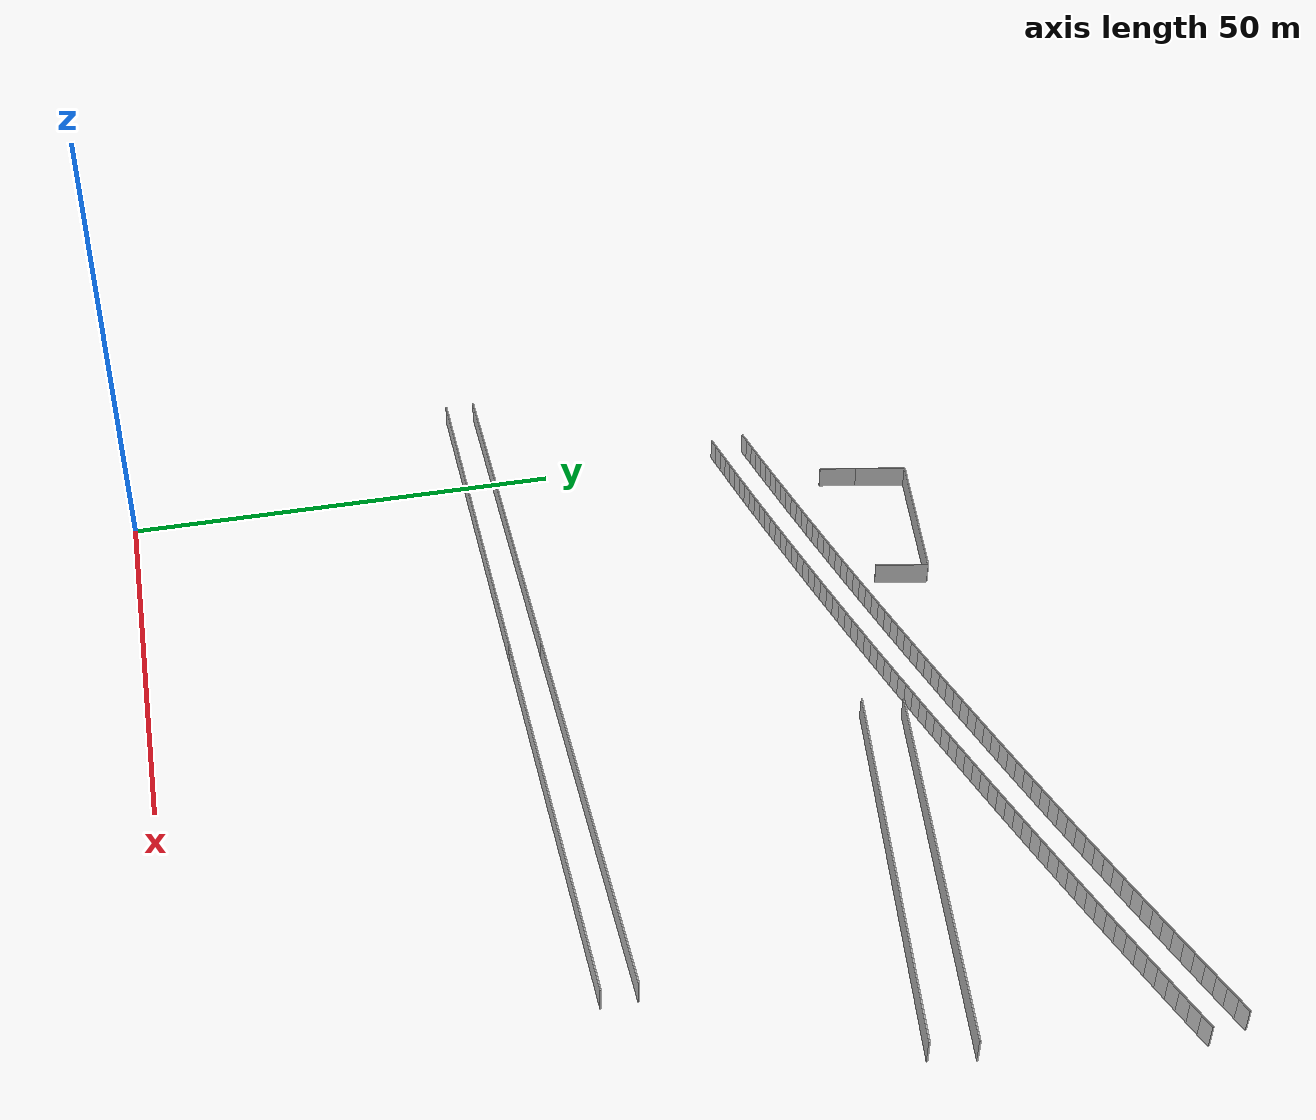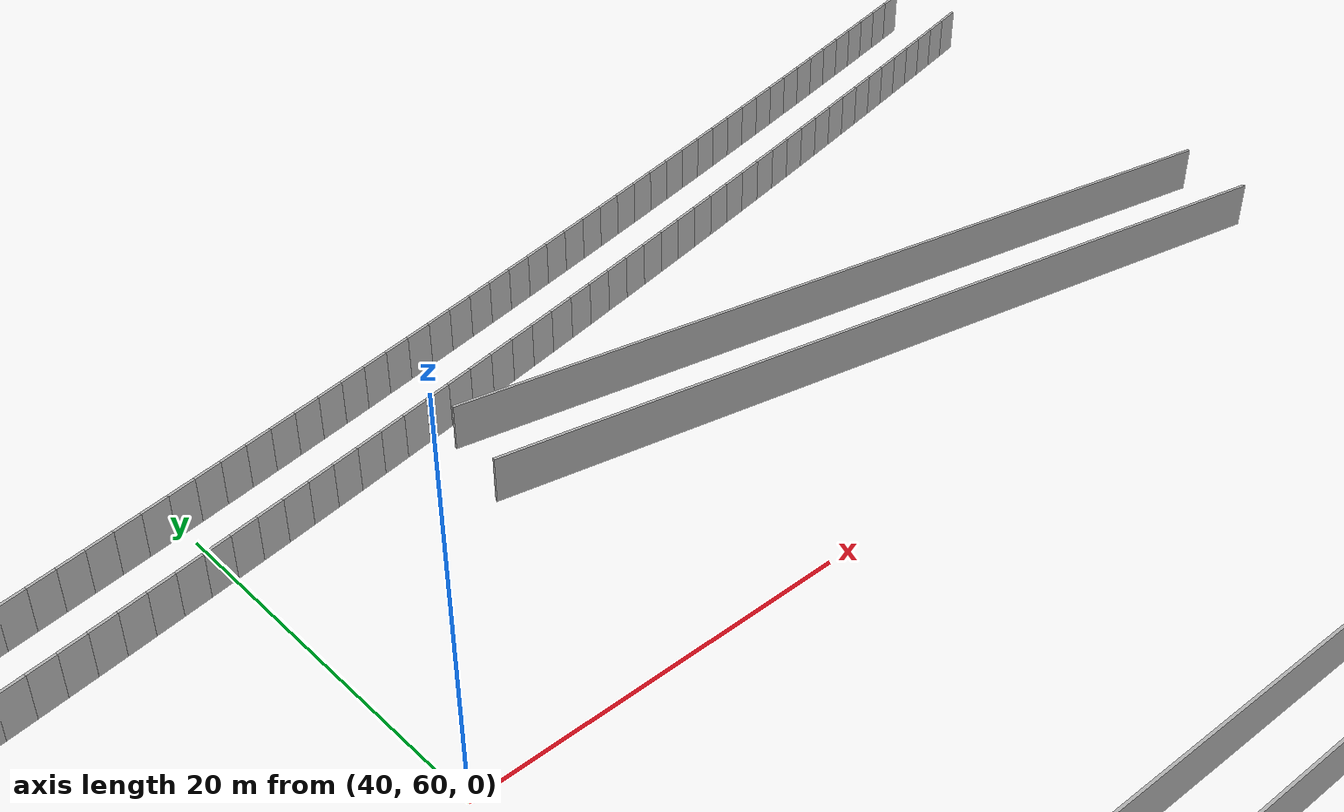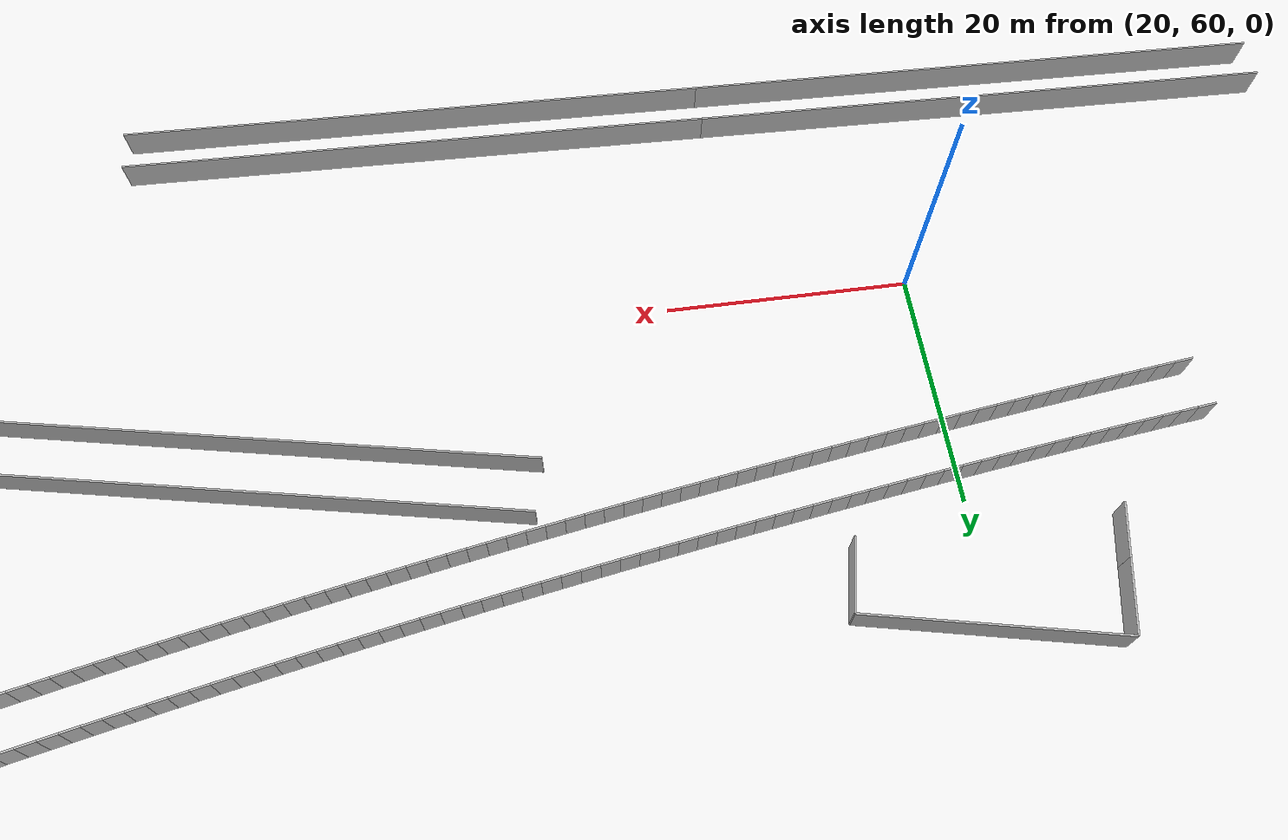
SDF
<sdf version="1.6">
 <model name="sps_1401">
  <static>1</static>
  <allow_auto_disable>0</allow_auto_disable>
  <link name="Wall137">
   <collision name="collision"><geometry><box><size>20 0.15 2.5</size></box></geometry></collision>
   <visual name="visual">
    <geometry><box><size>20 0.15 2.5</size></box></geometry>
    <transparency>0.0</transparency>
   </visual>
   <pose>21.0121 90.5186 1.25 0 0 -0.214245</pose>
  </link>
  <link name="Wall240">
   <collision name="collision"><geometry><box><size>5.9893 0.15 2.5</size></box></geometry></collision>
   <visual name="visual">
    <geometry><box><size>5.9893 0.15 2.5</size></box></geometry>
    <transparency>0.0</transparency>
   </visual>
   <pose>30.1468 85.4663 1.25 0 0 -1.78505</pose>
  </link>
  <link name="Wall374">
   <collision name="collision"><geometry><box><size>5.9893 0.15 2.5</size></box></geometry></collision>
   <visual name="visual">
    <geometry><box><size>5.9893 0.15 2.5</size></box></geometry>
    <transparency>0.0</transparency>
   </visual>
   <pose>10.604 89.7185 1.25 0 0 -1.78505</pose>
  </link>
  <link name="Wall459">
   <collision name="collision"><geometry><box><size>50.0165 0.15 2.5</size></box></geometry></collision>
   <visual name="visual">
    <geometry><box><size>50.0165 0.15 2.5</size></box></geometry>
    <transparency>0.0</transparency>
   </visual>
   <pose>59.4694 38.2343 1.25 0 -0 3.11591</pose>
  </link>
  <link name="Wall460">
   <collision name="collision"><geometry><box><size>50.0165 0.15 2.5</size></box></geometry></collision>
   <visual name="visual">
    <geometry><box><size>50.0165 0.15 2.5</size></box></geometry>
    <transparency>0.0</transparency>
   </visual>
   <pose>9.46944 39.5186 1.25 0 -0 3.11591</pose>
  </link>
  <link name="Wall465">
   <collision name="collision"><geometry><box><size>50.0165 0.15 2.5</size></box></geometry></collision>
   <visual name="visual">
    <geometry><box><size>50.0165 0.15 2.5</size></box></geometry>
    <transparency>0.0</transparency>
   </visual>
   <pose>9.46944 43.0195 1.25 0 0 -0.0256802</pose>
  </link>
  <link name="Wall466">
   <collision name="collision"><geometry><box><size>50.0165 0.15 2.5</size></box></geometry></collision>
   <visual name="visual">
    <geometry><box><size>50.0165 0.15 2.5</size></box></geometry>
    <transparency>0.0</transparency>
   </visual>
   <pose>59.4694 41.7352 1.25 0 0 -0.0256802</pose>
  </link>
  <link name="Wall2702">
   <collision name="collision"><geometry><box><size>4.39977 0.15 2.5</size></box></geometry></collision>
   <visual name="visual">
    <geometry><box><size>4.39977 0.15 2.5</size></box></geometry>
    <transparency>0.0</transparency>
   </visual>
   <pose>9.49975 84.6427 1.25 0 0 -1.78502</pose>
  </link>
  <link name="Wall3621">
   <collision name="collision"><geometry><box><size>45.9351 0.15 2.5</size></box></geometry></collision>
   <visual name="visual">
    <geometry><box><size>45.9351 0.15 2.5</size></box></geometry>
    <transparency>0.0</transparency>
   </visual>
   <pose>74.1661 68.5489 1.25 0 -0 2.93706</pose>
  </link>
  <link name="Wall3778">
   <collision name="collision"><geometry><box><size>1.49654 0.15 2.5</size></box></geometry></collision>
   <visual name="visual">
    <geometry><box><size>1.49654 0.15 2.5</size></box></geometry>
    <transparency>0.0</transparency>
   </visual>
   <pose>0.206657 75.4595 1.25 0 -0 0.116539</pose>
  </link>
  <link name="Wall3779">
   <collision name="collision"><geometry><box><size>1.49646 0.15 2.5</size></box></geometry></collision>
   <visual name="visual">
    <geometry><box><size>1.49646 0.15 2.5</size></box></geometry>
    <transparency>0.0</transparency>
   </visual>
   <pose>1.69286 75.6347 1.25 0 -0 0.118148</pose>
  </link>
  <link name="Wall3780">
   <collision name="collision"><geometry><box><size>1.49652 0.15 2.5</size></box></geometry></collision>
   <visual name="visual">
    <geometry><box><size>1.49652 0.15 2.5</size></box></geometry>
    <transparency>0.0</transparency>
   </visual>
   <pose>3.17876 75.8124 1.25 0 -0 0.119868</pose>
  </link>
  <link name="Wall3781">
   <collision name="collision"><geometry><box><size>1.4964 0.15 2.5</size></box></geometry></collision>
   <visual name="visual">
    <geometry><box><size>1.4964 0.15 2.5</size></box></geometry>
    <transparency>0.0</transparency>
   </visual>
   <pose>4.66436 75.9924 1.25 0 -0 0.121274</pose>
  </link>
  <link name="Wall3782">
   <collision name="collision"><geometry><box><size>1.49645 0.15 2.5</size></box></geometry></collision>
   <visual name="visual">
    <geometry><box><size>1.49645 0.15 2.5</size></box></geometry>
    <transparency>0.0</transparency>
   </visual>
   <pose>6.14965 76.1746 1.25 0 -0 0.122873</pose>
  </link>
  <link name="Wall3783">
   <collision name="collision"><geometry><box><size>1.4964 0.15 2.5</size></box></geometry></collision>
   <visual name="visual">
    <geometry><box><size>1.4964 0.15 2.5</size></box></geometry>
    <transparency>0.0</transparency>
   </visual>
   <pose>7.63464 76.3593 1.25 0 -0 0.124603</pose>
  </link>
  <link name="Wall3784">
   <collision name="collision"><geometry><box><size>1.49666 0.15 2.5</size></box></geometry></collision>
   <visual name="visual">
    <geometry><box><size>1.49666 0.15 2.5</size></box></geometry>
    <transparency>0.0</transparency>
   </visual>
   <pose>9.11944 76.5463 1.25 0 -0 0.125938</pose>
  </link>
  <link name="Wall3785">
   <collision name="collision"><geometry><box><size>1.49662 0.15 2.5</size></box></geometry></collision>
   <visual name="visual">
    <geometry><box><size>1.49662 0.15 2.5</size></box></geometry>
    <transparency>0.0</transparency>
   </visual>
   <pose>10.6041 76.7356 1.25 0 -0 0.127709</pose>
  </link>
  <link name="Wall3786">
   <collision name="collision"><geometry><box><size>1.49651 0.15 2.5</size></box></geometry></collision>
   <visual name="visual">
    <geometry><box><size>1.49651 0.15 2.5</size></box></geometry>
    <transparency>0.0</transparency>
   </visual>
   <pose>12.0883 76.9274 1.25 0 -0 0.129323</pose>
  </link>
  <link name="Wall3787">
   <collision name="collision"><geometry><box><size>1.49655 0.15 2.5</size></box></geometry></collision>
   <visual name="visual">
    <geometry><box><size>1.49655 0.15 2.5</size></box></geometry>
    <transparency>0.0</transparency>
   </visual>
   <pose>13.5722 77.1215 1.25 0 -0 0.1308</pose>
  </link>
  <link name="Wall3788">
   <collision name="collision"><geometry><box><size>1.49651 0.15 2.5</size></box></geometry></collision>
   <visual name="visual">
    <geometry><box><size>1.49651 0.15 2.5</size></box></geometry>
    <transparency>0.0</transparency>
   </visual>
   <pose>15.0557 77.3179 1.25 0 -0 0.132449</pose>
  </link>
  <link name="Wall3789">
   <collision name="collision"><geometry><box><size>1.49664 0.15 2.5</size></box></geometry></collision>
   <visual name="visual">
    <geometry><box><size>1.49664 0.15 2.5</size></box></geometry>
    <transparency>0.0</transparency>
   </visual>
   <pose>16.5391 77.5167 1.25 0 -0 0.134042</pose>
  </link>
  <link name="Wall3790">
   <collision name="collision"><geometry><box><size>1.49651 0.15 2.5</size></box></geometry></collision>
   <visual name="visual">
    <geometry><box><size>1.49651 0.15 2.5</size></box></geometry>
    <transparency>0.0</transparency>
   </visual>
   <pose>18.0221 77.7178 1.25 0 -0 0.135535</pose>
  </link>
  <link name="Wall3791">
   <collision name="collision"><geometry><box><size>1.4965 0.15 2.5</size></box></geometry></collision>
   <visual name="visual">
    <geometry><box><size>1.4965 0.15 2.5</size></box></geometry>
    <transparency>0.0</transparency>
   </visual>
   <pose>19.5047 77.9213 1.25 0 -0 0.137265</pose>
  </link>
  <link name="Wall3792">
   <collision name="collision"><geometry><box><size>1.49656 0.15 2.5</size></box></geometry></collision>
   <visual name="visual">
    <geometry><box><size>1.49656 0.15 2.5</size></box></geometry>
    <transparency>0.0</transparency>
   </visual>
   <pose>20.987 78.1272 1.25 0 -0 0.138742</pose>
  </link>
  <link name="Wall3793">
   <collision name="collision"><geometry><box><size>1.49654 0.15 2.5</size></box></geometry></collision>
   <visual name="visual">
    <geometry><box><size>1.49654 0.15 2.5</size></box></geometry>
    <transparency>0.0</transparency>
   </visual>
   <pose>22.469 78.3354 1.25 0 -0 0.140392</pose>
  </link>
  <link name="Wall3794">
   <collision name="collision"><geometry><box><size>1.49642 0.15 2.5</size></box></geometry></collision>
   <visual name="visual">
    <geometry><box><size>1.49642 0.15 2.5</size></box></geometry>
    <transparency>0.0</transparency>
   </visual>
   <pose>23.9506 78.5459 1.25 0 -0 0.141886</pose>
  </link>
  <link name="Wall3795">
   <collision name="collision"><geometry><box><size>1.49658 0.15 2.5</size></box></geometry></collision>
   <visual name="visual">
    <geometry><box><size>1.49658 0.15 2.5</size></box></geometry>
    <transparency>0.0</transparency>
   </visual>
   <pose>25.4318 78.7587 1.25 0 -0 0.143477</pose>
  </link>
  <link name="Wall3796">
   <collision name="collision"><geometry><box><size>1.49659 0.15 2.5</size></box></geometry></collision>
   <visual name="visual">
    <geometry><box><size>1.49659 0.15 2.5</size></box></geometry>
    <transparency>0.0</transparency>
   </visual>
   <pose>26.9129 78.974 1.25 0 -0 0.145248</pose>
  </link>
  <link name="Wall3797">
   <collision name="collision"><geometry><box><size>1.49665 0.15 2.5</size></box></geometry></collision>
   <visual name="visual">
    <geometry><box><size>1.49665 0.15 2.5</size></box></geometry>
    <transparency>0.0</transparency>
   </visual>
   <pose>28.3936 79.1916 1.25 0 -0 0.146603</pose>
  </link>
  <link name="Wall3798">
   <collision name="collision"><geometry><box><size>1.4966 0.15 2.5</size></box></geometry></collision>
   <visual name="visual">
    <geometry><box><size>1.4966 0.15 2.5</size></box></geometry>
    <transparency>0.0</transparency>
   </visual>
   <pose>29.874 79.4115 1.25 0 -0 0.148339</pose>
  </link>
  <link name="Wall3799">
   <collision name="collision"><geometry><box><size>1.49638 0.15 2.5</size></box></geometry></collision>
   <visual name="visual">
    <geometry><box><size>1.49638 0.15 2.5</size></box></geometry>
    <transparency>0.0</transparency>
   </visual>
   <pose>31.3538 79.6338 1.25 0 -0 0.149846</pose>
  </link>
  <link name="Wall3800">
   <collision name="collision"><geometry><box><size>1.49656 0.15 2.5</size></box></geometry></collision>
   <visual name="visual">
    <geometry><box><size>1.49656 0.15 2.5</size></box></geometry>
    <transparency>0.0</transparency>
   </visual>
   <pose>32.8334 79.8584 1.25 0 -0 0.151437</pose>
  </link>
  <link name="Wall3801">
   <collision name="collision"><geometry><box><size>1.49651 0.15 2.5</size></box></geometry></collision>
   <visual name="visual">
    <geometry><box><size>1.49651 0.15 2.5</size></box></geometry>
    <transparency>0.0</transparency>
   </visual>
   <pose>34.3126 80.0854 1.25 0 -0 0.153093</pose>
  </link>
  <link name="Wall3802">
   <collision name="collision"><geometry><box><size>1.49642 0.15 2.5</size></box></geometry></collision>
   <visual name="visual">
    <geometry><box><size>1.49642 0.15 2.5</size></box></geometry>
    <transparency>0.0</transparency>
   </visual>
   <pose>35.7914 80.3147 1.25 0 -0 0.154587</pose>
  </link>
  <link name="Wall3803">
   <collision name="collision"><geometry><box><size>1.49661 0.15 2.5</size></box></geometry></collision>
   <visual name="visual">
    <geometry><box><size>1.49661 0.15 2.5</size></box></geometry>
    <transparency>0.0</transparency>
   </visual>
   <pose>37.2699 80.5463 1.25 0 -0 0.156178</pose>
  </link>
  <link name="Wall3804">
   <collision name="collision"><geometry><box><size>1.4966 0.15 2.5</size></box></geometry></collision>
   <visual name="visual">
    <geometry><box><size>1.4966 0.15 2.5</size></box></geometry>
    <transparency>0.0</transparency>
   </visual>
   <pose>38.7481 80.7802 1.25 0 -0 0.157706</pose>
  </link>
  <link name="Wall3805">
   <collision name="collision"><geometry><box><size>1.49657 0.15 2.5</size></box></geometry></collision>
   <visual name="visual">
    <geometry><box><size>1.49657 0.15 2.5</size></box></geometry>
    <transparency>0.0</transparency>
   </visual>
   <pose>40.2259 81.0165 1.25 0 -0 0.159403</pose>
  </link>
  <link name="Wall3806">
   <collision name="collision"><geometry><box><size>1.49651 0.15 2.5</size></box></geometry></collision>
   <visual name="visual">
    <geometry><box><size>1.49651 0.15 2.5</size></box></geometry>
    <transparency>0.0</transparency>
   </visual>
   <pose>41.7033 81.2552 1.25 0 -0 0.160938</pose>
  </link>
  <link name="Wall3807">
   <collision name="collision"><geometry><box><size>1.49653 0.15 2.5</size></box></geometry></collision>
   <visual name="visual">
    <geometry><box><size>1.49653 0.15 2.5</size></box></geometry>
    <transparency>0.0</transparency>
   </visual>
   <pose>43.1803 81.4962 1.25 0 -0 0.162547</pose>
  </link>
  <link name="Wall3808">
   <collision name="collision"><geometry><box><size>1.49648 0.15 2.5</size></box></geometry></collision>
   <visual name="visual">
    <geometry><box><size>1.49648 0.15 2.5</size></box></geometry>
    <transparency>0.0</transparency>
   </visual>
   <pose>44.6569 81.7395 1.25 0 -0 0.164083</pose>
  </link>
  <link name="Wall3809">
   <collision name="collision"><geometry><box><size>1.4965 0.15 2.5</size></box></geometry></collision>
   <visual name="visual">
    <geometry><box><size>1.4965 0.15 2.5</size></box></geometry>
    <transparency>0.0</transparency>
   </visual>
   <pose>46.133 81.9851 1.25 0 -0 0.165652</pose>
  </link>
  <link name="Wall3810">
   <collision name="collision"><geometry><box><size>1.49648 0.15 2.5</size></box></geometry></collision>
   <visual name="visual">
    <geometry><box><size>1.49648 0.15 2.5</size></box></geometry>
    <transparency>0.0</transparency>
   </visual>
   <pose>47.6088 82.2331 1.25 0 -0 0.167308</pose>
  </link>
  <link name="Wall3811">
   <collision name="collision"><geometry><box><size>1.49652 0.15 2.5</size></box></geometry></collision>
   <visual name="visual">
    <geometry><box><size>1.49652 0.15 2.5</size></box></geometry>
    <transparency>0.0</transparency>
   </visual>
   <pose>49.0843 82.4835 1.25 0 -0 0.168917</pose>
  </link>
  <link name="Wall3812">
   <collision name="collision"><geometry><box><size>1.49666 0.15 2.5</size></box></geometry></collision>
   <visual name="visual">
    <geometry><box><size>1.49666 0.15 2.5</size></box></geometry>
    <transparency>0.0</transparency>
   </visual>
   <pose>50.5593 82.7362 1.25 0 -0 0.170432</pose>
  </link>
  <link name="Wall3813">
   <collision name="collision"><geometry><box><size>1.49651 0.15 2.5</size></box></geometry></collision>
   <visual name="visual">
    <geometry><box><size>1.49651 0.15 2.5</size></box></geometry>
    <transparency>0.0</transparency>
   </visual>
   <pose>52.034 82.9912 1.25 0 -0 0.172021</pose>
  </link>
  <link name="Wall3814">
   <collision name="collision"><geometry><box><size>1.49651 0.15 2.5</size></box></geometry></collision>
   <visual name="visual">
    <geometry><box><size>1.49651 0.15 2.5</size></box></geometry>
    <transparency>0.0</transparency>
   </visual>
   <pose>53.5083 83.2486 1.25 0 -0 0.173678</pose>
  </link>
  <link name="Wall3815">
   <collision name="collision"><geometry><box><size>1.49647 0.15 2.5</size></box></geometry></collision>
   <visual name="visual">
    <geometry><box><size>1.49647 0.15 2.5</size></box></geometry>
    <transparency>0.0</transparency>
   </visual>
   <pose>54.982 83.5083 1.25 0 -0 0.175173</pose>
  </link>
  <link name="Wall3816">
   <collision name="collision"><geometry><box><size>1.49635 0.15 2.5</size></box></geometry></collision>
   <visual name="visual">
    <geometry><box><size>1.49635 0.15 2.5</size></box></geometry>
    <transparency>0.0</transparency>
   </visual>
   <pose>56.4553 83.7703 1.25 0 -0 0.176804</pose>
  </link>
  <link name="Wall3817">
   <collision name="collision"><geometry><box><size>1.49654 0.15 2.5</size></box></geometry></collision>
   <visual name="visual">
    <geometry><box><size>1.49654 0.15 2.5</size></box></geometry>
    <transparency>0.0</transparency>
   </visual>
   <pose>57.9282 84.0347 1.25 0 -0 0.178438</pose>
  </link>
  <link name="Wall3818">
   <collision name="collision"><geometry><box><size>1.49657 0.15 2.5</size></box></geometry></collision>
   <visual name="visual">
    <geometry><box><size>1.49657 0.15 2.5</size></box></geometry>
    <transparency>0.0</transparency>
   </visual>
   <pose>59.4008 84.3014 1.25 0 -0 0.179926</pose>
  </link>
  <link name="Wall3819">
   <collision name="collision"><geometry><box><size>1.49658 0.15 2.5</size></box></geometry></collision>
   <visual name="visual">
    <geometry><box><size>1.49658 0.15 2.5</size></box></geometry>
    <transparency>0.0</transparency>
   </visual>
   <pose>60.873 84.5704 1.25 0 -0 0.181542</pose>
  </link>
  <link name="Wall3820">
   <collision name="collision"><geometry><box><size>1.49665 0.15 2.5</size></box></geometry></collision>
   <visual name="visual">
    <geometry><box><size>1.49665 0.15 2.5</size></box></geometry>
    <transparency>0.0</transparency>
   </visual>
   <pose>62.3448 84.8418 1.25 0 -0 0.183151</pose>
  </link>
  <link name="Wall3821">
   <collision name="collision"><geometry><box><size>1.49649 0.15 2.5</size></box></geometry></collision>
   <visual name="visual">
    <geometry><box><size>1.49649 0.15 2.5</size></box></geometry>
    <transparency>0.0</transparency>
   </visual>
   <pose>63.8162 85.1156 1.25 0 -0 0.184789</pose>
  </link>
  <link name="Wall3822">
   <collision name="collision"><geometry><box><size>1.49648 0.15 2.5</size></box></geometry></collision>
   <visual name="visual">
    <geometry><box><size>1.49648 0.15 2.5</size></box></geometry>
    <transparency>0.0</transparency>
   </visual>
   <pose>65.2869 85.3917 1.25 0 -0 0.186325</pose>
  </link>
  <link name="Wall3823">
   <collision name="collision"><geometry><box><size>1.49671 0.15 2.5</size></box></geometry></collision>
   <visual name="visual">
    <geometry><box><size>1.49671 0.15 2.5</size></box></geometry>
    <transparency>0.0</transparency>
   </visual>
   <pose>66.7574 85.67 1.25 0 -0 0.18779</pose>
  </link>
  <link name="Wall3824">
   <collision name="collision"><geometry><box><size>1.49638 0.15 2.5</size></box></geometry></collision>
   <visual name="visual">
    <geometry><box><size>1.49638 0.15 2.5</size></box></geometry>
    <transparency>0.0</transparency>
   </visual>
   <pose>68.2274 85.9506 1.25 0 -0 0.189452</pose>
  </link>
  <link name="Wall3825">
   <collision name="collision"><geometry><box><size>1.49665 0.15 2.5</size></box></geometry></collision>
   <visual name="visual">
    <geometry><box><size>1.49665 0.15 2.5</size></box></geometry>
    <transparency>0.0</transparency>
   </visual>
   <pose>69.697 86.2336 1.25 0 -0 0.191037</pose>
  </link>
  <link name="Wall3826">
   <collision name="collision"><geometry><box><size>1.49652 0.15 2.5</size></box></geometry></collision>
   <visual name="visual">
    <geometry><box><size>1.49652 0.15 2.5</size></box></geometry>
    <transparency>0.0</transparency>
   </visual>
   <pose>71.1661 86.519 1.25 0 -0 0.192716</pose>
  </link>
  <link name="Wall3827">
   <collision name="collision"><geometry><box><size>1.49651 0.15 2.5</size></box></geometry></collision>
   <visual name="visual">
    <geometry><box><size>1.49651 0.15 2.5</size></box></geometry>
    <transparency>0.0</transparency>
   </visual>
   <pose>72.6347 86.8067 1.25 0 -0 0.194172</pose>
  </link>
  <link name="Wall3828">
   <collision name="collision"><geometry><box><size>1.49638 0.15 2.5</size></box></geometry></collision>
   <visual name="visual">
    <geometry><box><size>1.49638 0.15 2.5</size></box></geometry>
    <transparency>0.0</transparency>
   </visual>
   <pose>74.1027 87.0967 1.25 0 -0 0.195852</pose>
  </link>
  <link name="Wall3829">
   <collision name="collision"><geometry><box><size>1.49646 0.15 2.5</size></box></geometry></collision>
   <visual name="visual">
    <geometry><box><size>1.49646 0.15 2.5</size></box></geometry>
    <transparency>0.0</transparency>
   </visual>
   <pose>75.5703 87.389 1.25 0 -0 0.19738</pose>
  </link>
  <link name="Wall3830">
   <collision name="collision"><geometry><box><size>1.49656 0.15 2.5</size></box></geometry></collision>
   <visual name="visual">
    <geometry><box><size>1.49656 0.15 2.5</size></box></geometry>
    <transparency>0.0</transparency>
   </visual>
   <pose>77.0376 87.6836 1.25 0 -0 0.198947</pose>
  </link>
  <link name="Wall3831">
   <collision name="collision"><geometry><box><size>1.49652 0.15 2.5</size></box></geometry></collision>
   <visual name="visual">
    <geometry><box><size>1.49652 0.15 2.5</size></box></geometry>
    <transparency>0.0</transparency>
   </visual>
   <pose>78.5044 87.9805 1.25 0 -0 0.200451</pose>
  </link>
  <link name="Wall3832">
   <collision name="collision"><geometry><box><size>1.4965 0.15 2.5</size></box></geometry></collision>
   <visual name="visual">
    <geometry><box><size>1.4965 0.15 2.5</size></box></geometry>
    <transparency>0.0</transparency>
   </visual>
   <pose>79.9706 88.2798 1.25 0 -0 0.202243</pose>
  </link>
  <link name="Wall3833">
   <collision name="collision"><geometry><box><size>1.49659 0.15 2.5</size></box></geometry></collision>
   <visual name="visual">
    <geometry><box><size>1.49659 0.15 2.5</size></box></geometry>
    <transparency>0.0</transparency>
   </visual>
   <pose>81.4365 88.5815 1.25 0 -0 0.20373</pose>
  </link>
  <link name="Wall3834">
   <collision name="collision"><geometry><box><size>1.49663 0.15 2.5</size></box></geometry></collision>
   <visual name="visual">
    <geometry><box><size>1.49663 0.15 2.5</size></box></geometry>
    <transparency>0.0</transparency>
   </visual>
   <pose>82.9019 88.8854 1.25 0 -0 0.205266</pose>
  </link>
  <link name="Wall3835">
   <collision name="collision"><geometry><box><size>1.49654 0.15 2.5</size></box></geometry></collision>
   <visual name="visual">
    <geometry><box><size>1.49654 0.15 2.5</size></box></geometry>
    <transparency>0.0</transparency>
   </visual>
   <pose>84.3668 89.1917 1.25 0 -0 0.206986</pose>
  </link>
  <link name="Wall3836">
   <collision name="collision"><geometry><box><size>1.49655 0.15 2.5</size></box></geometry></collision>
   <visual name="visual">
    <geometry><box><size>1.49655 0.15 2.5</size></box></geometry>
    <transparency>0.0</transparency>
   </visual>
   <pose>85.8312 89.5003 1.25 0 -0 0.208402</pose>
  </link>
  <link name="Wall3837">
   <collision name="collision"><geometry><box><size>1.49673 0.15 2.5</size></box></geometry></collision>
   <visual name="visual">
    <geometry><box><size>1.49673 0.15 2.5</size></box></geometry>
    <transparency>0.0</transparency>
   </visual>
   <pose>87.2952 89.8112 1.25 0 -0 0.210128</pose>
  </link>
  <link name="Wall3838">
   <collision name="collision"><geometry><box><size>1.49641 0.15 2.5</size></box></geometry></collision>
   <visual name="visual">
    <geometry><box><size>1.49641 0.15 2.5</size></box></geometry>
    <transparency>0.0</transparency>
   </visual>
   <pose>88.7586 90.1245 1.25 0 -0 0.211674</pose>
  </link>
  <link name="Wall3839">
   <collision name="collision"><geometry><box><size>1.49664 0.15 2.5</size></box></geometry></collision>
   <visual name="visual">
    <geometry><box><size>1.49664 0.15 2.5</size></box></geometry>
    <transparency>0.0</transparency>
   </visual>
   <pose>90.2215 90.44 1.25 0 -0 0.213144</pose>
  </link>
  <link name="Wall3840">
   <collision name="collision"><geometry><box><size>1.49648 0.15 2.5</size></box></geometry></collision>
   <visual name="visual">
    <geometry><box><size>1.49648 0.15 2.5</size></box></geometry>
    <transparency>0.0</transparency>
   </visual>
   <pose>91.6839 90.7579 1.25 0 -0 0.214962</pose>
  </link>
  <link name="Wall3841">
   <collision name="collision"><geometry><box><size>1.49643 0.15 2.5</size></box></geometry></collision>
   <visual name="visual">
    <geometry><box><size>1.49643 0.15 2.5</size></box></geometry>
    <transparency>0.0</transparency>
   </visual>
   <pose>93.1457 91.0781 1.25 0 -0 0.216346</pose>
  </link>
  <link name="Wall3842">
   <collision name="collision"><geometry><box><size>1.49663 0.15 2.5</size></box></geometry></collision>
   <visual name="visual">
    <geometry><box><size>1.49663 0.15 2.5</size></box></geometry>
    <transparency>0.0</transparency>
   </visual>
   <pose>94.607 91.4005 1.25 0 -0 0.217904</pose>
  </link>
  <link name="Wall3843">
   <collision name="collision"><geometry><box><size>1.49647 0.15 2.5</size></box></geometry></collision>
   <visual name="visual">
    <geometry><box><size>1.49647 0.15 2.5</size></box></geometry>
    <transparency>0.0</transparency>
   </visual>
   <pose>96.068 91.7252 1.25 0 -0 0.219474</pose>
  </link>
  <link name="Wall3844">
   <collision name="collision"><geometry><box><size>1.49651 0.15 2.5</size></box></geometry></collision>
   <visual name="visual">
    <geometry><box><size>1.49651 0.15 2.5</size></box></geometry>
    <transparency>0.0</transparency>
   </visual>
   <pose>97.5283 92.0523 1.25 0 -0 0.221266</pose>
  </link>
  <link name="Wall3845">
   <collision name="collision"><geometry><box><size>1.49638 0.15 2.5</size></box></geometry></collision>
   <visual name="visual">
    <geometry><box><size>1.49638 0.15 2.5</size></box></geometry>
    <transparency>0.0</transparency>
   </visual>
   <pose>98.988 92.3818 1.25 0 -0 0.222748</pose>
  </link>
  <link name="Wall7396">
   <collision name="collision"><geometry><box><size>45.8889 0.15 2.5</size></box></geometry></collision>
   <visual name="visual">
    <geometry><box><size>45.8889 0.15 2.5</size></box></geometry>
    <transparency>0.0</transparency>
   </visual>
   <pose>75.0788 72.8531 1.25 0 -0 2.93706</pose>
  </link>
  <link name="Wall7553">
   <collision name="collision"><geometry><box><size>1.5032 0.15 2.5</size></box></geometry></collision>
   <visual name="visual">
    <geometry><box><size>1.5032 0.15 2.5</size></box></geometry>
    <transparency>0.0</transparency>
   </visual>
   <pose>0.691154 71.3476 1.25 0 -0 0.116675</pose>
  </link>
  <link name="Wall7554">
   <collision name="collision"><geometry><box><size>1.5031 0.15 2.5</size></box></geometry></collision>
   <visual name="visual">
    <geometry><box><size>1.5031 0.15 2.5</size></box></geometry>
    <transparency>0.0</transparency>
   </visual>
   <pose>2.18395 71.5237 1.25 0 -0 0.118195</pose>
  </link>
  <link name="Wall7555">
   <collision name="collision"><geometry><box><size>1.50313 0.15 2.5</size></box></geometry></collision>
   <visual name="visual">
    <geometry><box><size>1.50313 0.15 2.5</size></box></geometry>
    <transparency>0.0</transparency>
   </visual>
   <pose>3.67644 71.7021 1.25 0 -0 0.119747</pose>
  </link>
  <link name="Wall7556">
   <collision name="collision"><geometry><box><size>1.50306 0.15 2.5</size></box></geometry></collision>
   <visual name="visual">
    <geometry><box><size>1.50306 0.15 2.5</size></box></geometry>
    <transparency>0.0</transparency>
   </visual>
   <pose>5.16863 71.8829 1.25 0 -0 0.121388</pose>
  </link>
  <link name="Wall7557">
   <collision name="collision"><geometry><box><size>1.50297 0.15 2.5</size></box></geometry></collision>
   <visual name="visual">
    <geometry><box><size>1.50297 0.15 2.5</size></box></geometry>
    <transparency>0.0</transparency>
   </visual>
   <pose>6.66045 72.066 1.25 0 -0 0.122869</pose>
  </link>
  <link name="Wall7558">
   <collision name="collision"><geometry><box><size>1.5032 0.15 2.5</size></box></geometry></collision>
   <visual name="visual">
    <geometry><box><size>1.5032 0.15 2.5</size></box></geometry>
    <transparency>0.0</transparency>
   </visual>
   <pose>8.15206 72.2514 1.25 0 -0 0.124446</pose>
  </link>
  <link name="Wall7559">
   <collision name="collision"><geometry><box><size>1.50296 0.15 2.5</size></box></geometry></collision>
   <visual name="visual">
    <geometry><box><size>1.50296 0.15 2.5</size></box></geometry>
    <transparency>0.0</transparency>
   </visual>
   <pose>9.64336 72.4392 1.25 0 -0 0.126103</pose>
  </link>
  <link name="Wall7560">
   <collision name="collision"><geometry><box><size>1.5032 0.15 2.5</size></box></geometry></collision>
   <visual name="visual">
    <geometry><box><size>1.5032 0.15 2.5</size></box></geometry>
    <transparency>0.0</transparency>
   </visual>
   <pose>11.1344 72.6294 1.25 0 -0 0.127679</pose>
  </link>
  <link name="Wall7561">
   <collision name="collision"><geometry><box><size>1.50314 0.15 2.5</size></box></geometry></collision>
   <visual name="visual">
    <geometry><box><size>1.50314 0.15 2.5</size></box></geometry>
    <transparency>0.0</transparency>
   </visual>
   <pose>12.6251 72.822 1.25 0 -0 0.129281</pose>
  </link>
  <link name="Wall7562">
   <collision name="collision"><geometry><box><size>1.50307 0.15 2.5</size></box></geometry></collision>
   <visual name="visual">
    <geometry><box><size>1.50307 0.15 2.5</size></box></geometry>
    <transparency>0.0</transparency>
   </visual>
   <pose>14.1156 73.0169 1.25 0 -0 0.130762</pose>
  </link>
  <link name="Wall7563">
   <collision name="collision"><geometry><box><size>1.50317 0.15 2.5</size></box></geometry></collision>
   <visual name="visual">
    <geometry><box><size>1.50317 0.15 2.5</size></box></geometry>
    <transparency>0.0</transparency>
   </visual>
   <pose>15.6057 73.2142 1.25 0 -0 0.132514</pose>
  </link>
  <link name="Wall7564">
   <collision name="collision"><geometry><box><size>1.50304 0.15 2.5</size></box></geometry></collision>
   <visual name="visual">
    <geometry><box><size>1.50304 0.15 2.5</size></box></geometry>
    <transparency>0.0</transparency>
   </visual>
   <pose>17.0955 73.4139 1.25 0 -0 0.134001</pose>
  </link>
  <link name="Wall7565">
   <collision name="collision"><geometry><box><size>1.50299 0.15 2.5</size></box></geometry></collision>
   <visual name="visual">
    <geometry><box><size>1.50299 0.15 2.5</size></box></geometry>
    <transparency>0.0</transparency>
   </visual>
   <pose>18.5848 73.6159 1.25 0 -0 0.135603</pose>
  </link>
  <link name="Wall7566">
   <collision name="collision"><geometry><box><size>1.50314 0.15 2.5</size></box></geometry></collision>
   <visual name="visual">
    <geometry><box><size>1.50314 0.15 2.5</size></box></geometry>
    <transparency>0.0</transparency>
   </visual>
   <pose>20.0739 73.8203 1.25 0 -0 0.137228</pose>
  </link>
  <link name="Wall7567">
   <collision name="collision"><geometry><box><size>1.50302 0.15 2.5</size></box></geometry></collision>
   <visual name="visual">
    <geometry><box><size>1.50302 0.15 2.5</size></box></geometry>
    <transparency>0.0</transparency>
   </visual>
   <pose>21.5627 74.027 1.25 0 -0 0.138675</pose>
  </link>
  <link name="Wall7568">
   <collision name="collision"><geometry><box><size>1.50321 0.15 2.5</size></box></geometry></collision>
   <visual name="visual">
    <geometry><box><size>1.50321 0.15 2.5</size></box></geometry>
    <transparency>0.0</transparency>
   </visual>
   <pose>23.0512 74.2361 1.25 0 -0 0.140462</pose>
  </link>
  <link name="Wall7569">
   <collision name="collision"><geometry><box><size>1.5029 0.15 2.5</size></box></geometry></collision>
   <visual name="visual">
    <geometry><box><size>1.5029 0.15 2.5</size></box></geometry>
    <transparency>0.0</transparency>
   </visual>
   <pose>24.5393 74.4476 1.25 0 -0 0.141926</pose>
  </link>
  <link name="Wall7570">
   <collision name="collision"><geometry><box><size>1.5033 0.15 2.5</size></box></geometry></collision>
   <visual name="visual">
    <geometry><box><size>1.5033 0.15 2.5</size></box></geometry>
    <transparency>0.0</transparency>
   </visual>
   <pose>26.0272 74.6614 1.25 0 -0 0.143488</pose>
  </link>
  <link name="Wall7571">
   <collision name="collision"><geometry><box><size>1.50299 0.15 2.5</size></box></geometry></collision>
   <visual name="visual">
    <geometry><box><size>1.50299 0.15 2.5</size></box></geometry>
    <transparency>0.0</transparency>
   </visual>
   <pose>27.5147 74.8776 1.25 0 -0 0.145159</pose>
  </link>
  <link name="Wall7572">
   <collision name="collision"><geometry><box><size>1.50313 0.15 2.5</size></box></geometry></collision>
   <visual name="visual">
    <geometry><box><size>1.50313 0.15 2.5</size></box></geometry>
    <transparency>0.0</transparency>
   </visual>
   <pose>29.0018 75.0961 1.25 0 -0 0.146623</pose>
  </link>
  <link name="Wall7573">
   <collision name="collision"><geometry><box><size>1.50306 0.15 2.5</size></box></geometry></collision>
   <visual name="visual">
    <geometry><box><size>1.50306 0.15 2.5</size></box></geometry>
    <transparency>0.0</transparency>
   </visual>
   <pose>30.4885 75.3169 1.25 0 -0 0.148231</pose>
  </link>
  <link name="Wall7574">
   <collision name="collision"><geometry><box><size>1.50287 0.15 2.5</size></box></geometry></collision>
   <visual name="visual">
    <geometry><box><size>1.50287 0.15 2.5</size></box></geometry>
    <transparency>0.0</transparency>
   </visual>
   <pose>31.9748 75.5401 1.25 0 -0 0.149892</pose>
  </link>
  <link name="Wall7575">
   <collision name="collision"><geometry><box><size>1.50299 0.15 2.5</size></box></geometry></collision>
   <visual name="visual">
    <geometry><box><size>1.50299 0.15 2.5</size></box></geometry>
    <transparency>0.0</transparency>
   </visual>
   <pose>33.4607 75.7657 1.25 0 -0 0.151482</pose>
  </link>
  <link name="Wall7576">
   <collision name="collision"><geometry><box><size>1.50317 0.15 2.5</size></box></geometry></collision>
   <visual name="visual">
    <geometry><box><size>1.50317 0.15 2.5</size></box></geometry>
    <transparency>0.0</transparency>
   </visual>
   <pose>34.9464 75.9937 1.25 0 -0 0.153066</pose>
  </link>
  <link name="Wall7577">
   <collision name="collision"><geometry><box><size>1.50315 0.15 2.5</size></box></geometry></collision>
   <visual name="visual">
    <geometry><box><size>1.50315 0.15 2.5</size></box></geometry>
    <transparency>0.0</transparency>
   </visual>
   <pose>36.4318 76.224 1.25 0 -0 0.154548</pose>
  </link>
  <link name="Wall7578">
   <collision name="collision"><geometry><box><size>1.5031 0.15 2.5</size></box></geometry></collision>
   <visual name="visual">
    <geometry><box><size>1.5031 0.15 2.5</size></box></geometry>
    <transparency>0.0</transparency>
   </visual>
   <pose>37.9169 76.4566 1.25 0 -0 0.156197</pose>
  </link>
  <link name="Wall7579">
   <collision name="collision"><geometry><box><size>1.50305 0.15 2.5</size></box></geometry></collision>
   <visual name="visual">
    <geometry><box><size>1.50305 0.15 2.5</size></box></geometry>
    <transparency>0.0</transparency>
   </visual>
   <pose>39.4015 76.6916 1.25 0 -0 0.157805</pose>
  </link>
  <link name="Wall7580">
   <collision name="collision"><geometry><box><size>1.50325 0.15 2.5</size></box></geometry></collision>
   <visual name="visual">
    <geometry><box><size>1.50325 0.15 2.5</size></box></geometry>
    <transparency>0.0</transparency>
   </visual>
   <pose>40.8857 76.929 1.25 0 -0 0.159388</pose>
  </link>
  <link name="Wall7581">
   <collision name="collision"><geometry><box><size>1.50305 0.15 2.5</size></box></geometry></collision>
   <visual name="visual">
    <geometry><box><size>1.50305 0.15 2.5</size></box></geometry>
    <transparency>0.0</transparency>
   </visual>
   <pose>42.3697 77.1687 1.25 0 -0 0.160889</pose>
  </link>
  <link name="Wall7582">
   <collision name="collision"><geometry><box><size>1.50297 0.15 2.5</size></box></geometry></collision>
   <visual name="visual">
    <geometry><box><size>1.50297 0.15 2.5</size></box></geometry>
    <transparency>0.0</transparency>
   </visual>
   <pose>43.853 77.4107 1.25 0 -0 0.162545</pose>
  </link>
  <link name="Wall7583">
   <collision name="collision"><geometry><box><size>1.50305 0.15 2.5</size></box></geometry></collision>
   <visual name="visual">
    <geometry><box><size>1.50305 0.15 2.5</size></box></geometry>
    <transparency>0.0</transparency>
   </visual>
   <pose>45.3361 77.6551 1.25 0 -0 0.164141</pose>
  </link>
  <link name="Wall7584">
   <collision name="collision"><geometry><box><size>1.5032 0.15 2.5</size></box></geometry></collision>
   <visual name="visual">
    <geometry><box><size>1.5032 0.15 2.5</size></box></geometry>
    <transparency>0.0</transparency>
   </visual>
   <pose>46.8188 77.9019 1.25 0 -0 0.165729</pose>
  </link>
  <link name="Wall7585">
   <collision name="collision"><geometry><box><size>1.50296 0.15 2.5</size></box></geometry></collision>
   <visual name="visual">
    <geometry><box><size>1.50296 0.15 2.5</size></box></geometry>
    <transparency>0.0</transparency>
   </visual>
   <pose>48.3011 78.151 1.25 0 -0 0.167238</pose>
  </link>
  <link name="Wall7586">
   <collision name="collision"><geometry><box><size>1.50316 0.15 2.5</size></box></geometry></collision>
   <visual name="visual">
    <geometry><box><size>1.50316 0.15 2.5</size></box></geometry>
    <transparency>0.0</transparency>
   </visual>
   <pose>49.783 78.4025 1.25 0 -0 0.168987</pose>
  </link>
  <link name="Wall7587">
   <collision name="collision"><geometry><box><size>1.5032 0.15 2.5</size></box></geometry></collision>
   <visual name="visual">
    <geometry><box><size>1.5032 0.15 2.5</size></box></geometry>
    <transparency>0.0</transparency>
   </visual>
   <pose>51.2645 78.6563 1.25 0 -0 0.170342</pose>
  </link>
  <link name="Wall7588">
   <collision name="collision"><geometry><box><size>1.50298 0.15 2.5</size></box></geometry></collision>
   <visual name="visual">
    <geometry><box><size>1.50298 0.15 2.5</size></box></geometry>
    <transparency>0.0</transparency>
   </visual>
   <pose>52.7457 78.9124 1.25 0 -0 0.172099</pose>
  </link>
  <link name="Wall7589">
   <collision name="collision"><geometry><box><size>1.50317 0.15 2.5</size></box></geometry></collision>
   <visual name="visual">
    <geometry><box><size>1.50317 0.15 2.5</size></box></geometry>
    <transparency>0.0</transparency>
   </visual>
   <pose>54.2263 79.1709 1.25 0 -0 0.17356</pose>
  </link>
  <link name="Wall7590">
   <collision name="collision"><geometry><box><size>1.50309 0.15 2.5</size></box></geometry></collision>
   <visual name="visual">
    <geometry><box><size>1.50309 0.15 2.5</size></box></geometry>
    <transparency>0.0</transparency>
   </visual>
   <pose>55.7067 79.4318 1.25 0 -0 0.175343</pose>
  </link>
  <link name="Wall7591">
   <collision name="collision"><geometry><box><size>1.50299 0.15 2.5</size></box></geometry></collision>
   <visual name="visual">
    <geometry><box><size>1.50299 0.15 2.5</size></box></geometry>
    <transparency>0.0</transparency>
   </visual>
   <pose>57.1865 79.6951 1.25 0 -0 0.176839</pose>
  </link>
  <link name="Wall7592">
   <collision name="collision"><geometry><box><size>1.50308 0.15 2.5</size></box></geometry></collision>
   <visual name="visual">
    <geometry><box><size>1.50308 0.15 2.5</size></box></geometry>
    <transparency>0.0</transparency>
   </visual>
   <pose>58.6659 79.9606 1.25 0 -0 0.178314</pose>
  </link>
  <link name="Wall7593">
   <collision name="collision"><geometry><box><size>1.50302 0.15 2.5</size></box></geometry></collision>
   <visual name="visual">
    <geometry><box><size>1.50302 0.15 2.5</size></box></geometry>
    <transparency>0.0</transparency>
   </visual>
   <pose>60.1449 80.2284 1.25 0 -0 0.17993</pose>
  </link>
  <link name="Wall7594">
   <collision name="collision"><geometry><box><size>1.50334 0.15 2.5</size></box></geometry></collision>
   <visual name="visual">
    <geometry><box><size>1.50334 0.15 2.5</size></box></geometry>
    <transparency>0.0</transparency>
   </visual>
   <pose>61.6236 80.4986 1.25 0 -0 0.181542</pose>
  </link>
  <link name="Wall7595">
   <collision name="collision"><geometry><box><size>1.50293 0.15 2.5</size></box></geometry></collision>
   <visual name="visual">
    <geometry><box><size>1.50293 0.15 2.5</size></box></geometry>
    <transparency>0.0</transparency>
   </visual>
   <pose>63.1018 80.7712 1.25 0 -0 0.183203</pose>
  </link>
  <link name="Wall7596">
   <collision name="collision"><geometry><box><size>1.50298 0.15 2.5</size></box></geometry></collision>
   <visual name="visual">
    <geometry><box><size>1.50298 0.15 2.5</size></box></geometry>
    <transparency>0.0</transparency>
   </visual>
   <pose>64.5794 81.0461 1.25 0 -0 0.184684</pose>
  </link>
  <link name="Wall7597">
   <collision name="collision"><geometry><box><size>1.503 0.15 2.5</size></box></geometry></collision>
   <visual name="visual">
    <geometry><box><size>1.503 0.15 2.5</size></box></geometry>
    <transparency>0.0</transparency>
   </visual>
   <pose>66.0566 81.3233 1.25 0 -0 0.186293</pose>
  </link>
  <link name="Wall7598">
   <collision name="collision"><geometry><box><size>1.50327 0.15 2.5</size></box></geometry></collision>
   <visual name="visual">
    <geometry><box><size>1.50327 0.15 2.5</size></box></geometry>
    <transparency>0.0</transparency>
   </visual>
   <pose>67.5335 81.6029 1.25 0 -0 0.187912</pose>
  </link>
  <link name="Wall7599">
   <collision name="collision"><geometry><box><size>1.50312 0.15 2.5</size></box></geometry></collision>
   <visual name="visual">
    <geometry><box><size>1.50312 0.15 2.5</size></box></geometry>
    <transparency>0.0</transparency>
   </visual>
   <pose>69.01 81.8849 1.25 0 -0 0.189544</pose>
  </link>
  <link name="Wall7600">
   <collision name="collision"><geometry><box><size>1.50311 0.15 2.5</size></box></geometry></collision>
   <visual name="visual">
    <geometry><box><size>1.50311 0.15 2.5</size></box></geometry>
    <transparency>0.0</transparency>
   </visual>
   <pose>70.486 82.1692 1.25 0 -0 0.191033</pose>
  </link>
  <link name="Wall7601">
   <collision name="collision"><geometry><box><size>1.50303 0.15 2.5</size></box></geometry></collision>
   <visual name="visual">
    <geometry><box><size>1.50303 0.15 2.5</size></box></geometry>
    <transparency>0.0</transparency>
   </visual>
   <pose>71.9614 82.4558 1.25 0 -0 0.192657</pose>
  </link>
  <link name="Wall7602">
   <collision name="collision"><geometry><box><size>1.50303 0.15 2.5</size></box></geometry></collision>
   <visual name="visual">
    <geometry><box><size>1.50303 0.15 2.5</size></box></geometry>
    <transparency>0.0</transparency>
   </visual>
   <pose>73.4365 82.7447 1.25 0 -0 0.194146</pose>
  </link>
  <link name="Wall7603">
   <collision name="collision"><geometry><box><size>1.50318 0.15 2.5</size></box></geometry></collision>
   <visual name="visual">
    <geometry><box><size>1.50318 0.15 2.5</size></box></geometry>
    <transparency>0.0</transparency>
   </visual>
   <pose>74.9111 83.036 1.25 0 -0 0.195906</pose>
  </link>
  <link name="Wall7604">
   <collision name="collision"><geometry><box><size>1.50315 0.15 2.5</size></box></geometry></collision>
   <visual name="visual">
    <geometry><box><size>1.50315 0.15 2.5</size></box></geometry>
    <transparency>0.0</transparency>
   </visual>
   <pose>76.3853 83.3296 1.25 0 -0 0.197276</pose>
  </link>
  <link name="Wall7605">
   <collision name="collision"><geometry><box><size>1.50302 0.15 2.5</size></box></geometry></collision>
   <visual name="visual">
    <geometry><box><size>1.50302 0.15 2.5</size></box></geometry>
    <transparency>0.0</transparency>
   </visual>
   <pose>77.859 83.6254 1.25 0 -0 0.198909</pose>
  </link>
  <link name="Wall7606">
   <collision name="collision"><geometry><box><size>1.50309 0.15 2.5</size></box></geometry></collision>
   <visual name="visual">
    <geometry><box><size>1.50309 0.15 2.5</size></box></geometry>
    <transparency>0.0</transparency>
   </visual>
   <pose>79.3321 83.9236 1.25 0 -0 0.200557</pose>
  </link>
  <link name="Wall7607">
   <collision name="collision"><geometry><box><size>1.50302 0.15 2.5</size></box></geometry></collision>
   <visual name="visual">
    <geometry><box><size>1.50302 0.15 2.5</size></box></geometry>
    <transparency>0.0</transparency>
   </visual>
   <pose>80.8048 84.2242 1.25 0 -0 0.202142</pose>
  </link>
  <link name="Wall7608">
   <collision name="collision"><geometry><box><size>1.50315 0.15 2.5</size></box></geometry></collision>
   <visual name="visual">
    <geometry><box><size>1.50315 0.15 2.5</size></box></geometry>
    <transparency>0.0</transparency>
   </visual>
   <pose>82.2771 84.5272 1.25 0 -0 0.203782</pose>
  </link>
  <link name="Wall7609">
   <collision name="collision"><geometry><box><size>1.50317 0.15 2.5</size></box></geometry></collision>
   <visual name="visual">
    <geometry><box><size>1.50317 0.15 2.5</size></box></geometry>
    <transparency>0.0</transparency>
   </visual>
   <pose>83.7489 84.8326 1.25 0 -0 0.205438</pose>
  </link>
  <link name="Wall7610">
   <collision name="collision"><geometry><box><size>1.50307 0.15 2.5</size></box></geometry></collision>
   <visual name="visual">
    <geometry><box><size>1.50307 0.15 2.5</size></box></geometry>
    <transparency>0.0</transparency>
   </visual>
   <pose>85.2201 85.1403 1.25 0 -0 0.206904</pose>
  </link>
  <link name="Wall7611">
   <collision name="collision"><geometry><box><size>1.5031 0.15 2.5</size></box></geometry></collision>
   <visual name="visual">
    <geometry><box><size>1.5031 0.15 2.5</size></box></geometry>
    <transparency>0.0</transparency>
   </visual>
   <pose>86.6909 85.4502 1.25 0 -0 0.208393</pose>
  </link>
  <link name="Wall7612">
   <collision name="collision"><geometry><box><size>1.50325 0.15 2.5</size></box></geometry></collision>
   <visual name="visual">
    <geometry><box><size>1.50325 0.15 2.5</size></box></geometry>
    <transparency>0.0</transparency>
   </visual>
   <pose>88.1613 85.7624 1.25 0 -0 0.210033</pose>
  </link>
  <link name="Wall7613">
   <collision name="collision"><geometry><box><size>1.50297 0.15 2.5</size></box></geometry></collision>
   <visual name="visual">
    <geometry><box><size>1.50297 0.15 2.5</size></box></geometry>
    <transparency>0.0</transparency>
   </visual>
   <pose>89.6312 86.077 1.25 0 -0 0.211692</pose>
  </link>
  <link name="Wall7614">
   <collision name="collision"><geometry><box><size>1.50307 0.15 2.5</size></box></geometry></collision>
   <visual name="visual">
    <geometry><box><size>1.50307 0.15 2.5</size></box></geometry>
    <transparency>0.0</transparency>
   </visual>
   <pose>91.1004 86.394 1.25 0 -0 0.21334</pose>
  </link>
  <link name="Wall7615">
   <collision name="collision"><geometry><box><size>1.50293 0.15 2.5</size></box></geometry></collision>
   <visual name="visual">
    <geometry><box><size>1.50293 0.15 2.5</size></box></geometry>
    <transparency>0.0</transparency>
   </visual>
   <pose>92.5691 86.7133 1.25 0 -0 0.214815</pose>
  </link>
  <link name="Wall7616">
   <collision name="collision"><geometry><box><size>1.50305 0.15 2.5</size></box></geometry></collision>
   <visual name="visual">
    <geometry><box><size>1.50305 0.15 2.5</size></box></geometry>
    <transparency>0.0</transparency>
   </visual>
   <pose>94.0373 87.0348 1.25 0 -0 0.216335</pose>
  </link>
  <link name="Wall7617">
   <collision name="collision"><geometry><box><size>1.50313 0.15 2.5</size></box></geometry></collision>
   <visual name="visual">
    <geometry><box><size>1.50313 0.15 2.5</size></box></geometry>
    <transparency>0.0</transparency>
   </visual>
   <pose>95.5051 87.3586 1.25 0 -0 0.217903</pose>
  </link>
  <link name="Wall7618">
   <collision name="collision"><geometry><box><size>1.50307 0.15 2.5</size></box></geometry></collision>
   <visual name="visual">
    <geometry><box><size>1.50307 0.15 2.5</size></box></geometry>
    <transparency>0.0</transparency>
   </visual>
   <pose>96.9723 87.6848 1.25 0 -0 0.219576</pose>
  </link>
  <link name="Wall7619">
   <collision name="collision"><geometry><box><size>1.50325 0.15 2.5</size></box></geometry></collision>
   <visual name="visual">
    <geometry><box><size>1.50325 0.15 2.5</size></box></geometry>
    <transparency>0.0</transparency>
   </visual>
   <pose>98.4391 88.0134 1.25 0 -0 0.221214</pose>
  </link>
  <link name="Wall7620">
   <collision name="collision"><geometry><box><size>1.50312 0.15 2.5</size></box></geometry></collision>
   <visual name="visual">
    <geometry><box><size>1.50312 0.15 2.5</size></box></geometry>
    <transparency>0.0</transparency>
   </visual>
   <pose>99.9054 88.3443 1.25 0 -0 0.22269</pose>
  </link>
 </model>
</sdf>
